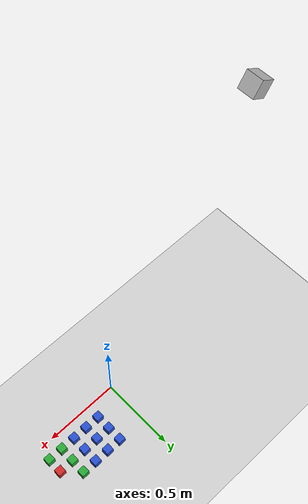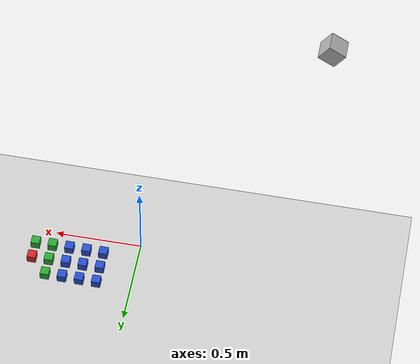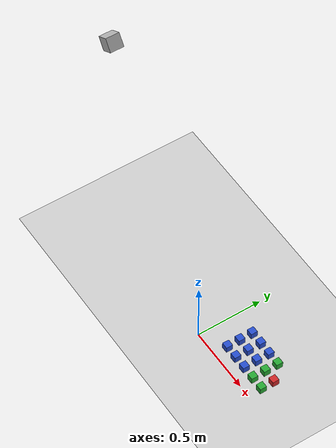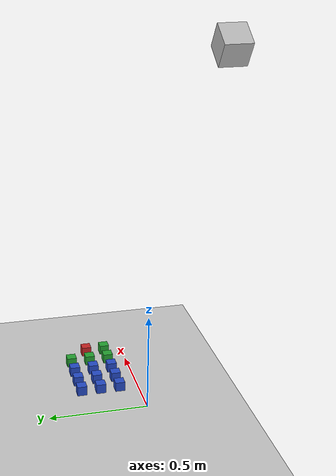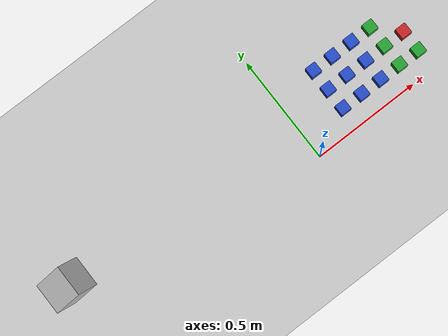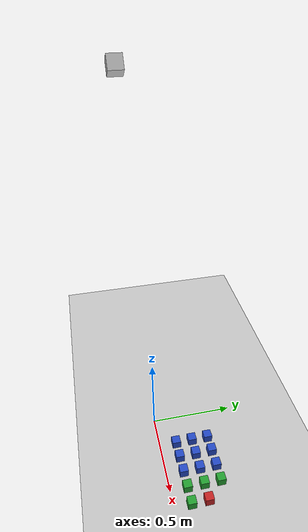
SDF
<sdf version="1.6">
 <world name="default">
  <plugin name="ros_link_attacher_plugin" filename="libgazebo_ros_link_attacher.so"/>
  <light name="sun" type="directional">
   <pose>0 0 10 0 -0 0</pose>
   <diffuse>0.8 0.8 0.8 1</diffuse>
   <specular>0.2 0.2 0.2 1</specular>
   <attenuation>
    <range>1000</range>
    <constant>0.9</constant>
    <linear>0.01</linear>
    <quadratic>0.001</quadratic>
   </attenuation>
   <direction>-0.5 0.1 -0.9</direction>
  </light>
  <model name="ground_plane">
   <static>1</static>
   <link name="link">
    <collision name="collision">
     <geometry><plane><normal>0 0 1</normal><size>100 100</size></plane></geometry>
     <surface>
      <contact><collide_bitmask>65535</collide_bitmask></contact>
      <friction><ode><mu>100</mu><mu2>50</mu2></ode></friction>
     </surface>
    </collision>
    <visual name="visual">
     <cast_shadows>0</cast_shadows>
     <geometry><plane><normal>0 0 1</normal><size>100 100</size></plane></geometry>
     <material>
      <script><uri>file://media/materials/scripts/gazebo.material</uri><name>Gazebo/Grey</name></script>
     </material>
    </visual>
   </link>
  </model>
  <gravity>0 0 -9.8</gravity>
  <magnetic_field>6e-06 2.3e-05 -4.2e-05</magnetic_field>
  <atmosphere type="adiabatic"/>
  <physics name="default_physics" default="0" type="ode">
   <max_step_size>0.001</max_step_size>
   <real_time_factor>1</real_time_factor>
   <real_time_update_rate>1000</real_time_update_rate>
  </physics>
  <scene><ambient>0.4 0.4 0.4 1</ambient><background>0.7 0.7 0.7 1</background><shadows>1</shadows></scene>
  <audio><device>default</device></audio>
  <spherical_coordinates>
   <surface_model>EARTH_WGS84</surface_model>
   <latitude_deg>0</latitude_deg>
   <longitude_deg>0</longitude_deg>
   <elevation>0</elevation>
   <heading_deg>0</heading_deg>
  </spherical_coordinates>
  <model name="blue1">
   <pose>0.2 0.1 0.024991 -9e-06 -2e-06 1.3e-05</pose>
   <link name="link">
    <inertial>
     <mass>10</mass>
     <inertia>
      <ixx>0.166667</ixx>
      <ixy>0</ixy>
      <ixz>0</ixz>
      <iyy>0.166667</iyy>
      <iyz>0</iyz>
      <izz>0.166667</izz>
     </inertia>
    </inertial>
    <collision name="collision">
     <geometry><box><size>0.05 0.05 0.05</size></box></geometry>
     <surface><friction><ode><mu>20</mu><mu2>20</mu2></ode></friction></surface>
    </collision>
    <visual name="visual">
     <geometry><box><size>0.05 0.05 0.05</size></box></geometry>
     <material>
      <script><name>Gazebo/Blue</name><uri>file://media/materials/scripts/gazebo.material</uri></script>
     </material>
    </visual>
   </link>
  </model>
  <model name="blue2">
   <pose>0.2 0.200001 0.025 -1.7e-05 2e-05 1e-06</pose>
   <link name="link">
    <inertial>
     <mass>10</mass>
     <inertia>
      <ixx>0.166667</ixx>
      <ixy>0</ixy>
      <ixz>0</ixz>
      <iyy>0.166667</iyy>
      <iyz>0</iyz>
      <izz>0.166667</izz>
     </inertia>
    </inertial>
    <collision name="collision">
     <geometry><box><size>0.05 0.05 0.05</size></box></geometry>
     <surface><friction><ode><mu>100</mu><mu2>100</mu2></ode></friction></surface>
    </collision>
    <visual name="visual">
     <geometry><box><size>0.05 0.05 0.05</size></box></geometry>
     <material>
      <script><name>Gazebo/Blue</name><uri>file://media/materials/scripts/gazebo.material</uri></script>
     </material>
    </visual>
   </link>
  </model>
  <model name="blue3">
   <pose>0.199999 0.299999 0.025001 2e-05 -3.1e-05 -9e-06</pose>
   <link name="link">
    <inertial>
     <mass>10</mass>
     <inertia>
      <ixx>0.166667</ixx>
      <ixy>0</ixy>
      <ixz>0</ixz>
      <iyy>0.166667</iyy>
      <iyz>0</iyz>
      <izz>0.166667</izz>
     </inertia>
    </inertial>
    <collision name="collision">
     <geometry><box><size>0.05 0.05 0.05</size></box></geometry>
     <surface><friction><ode><mu>100</mu><mu2>100</mu2></ode></friction></surface>
    </collision>
    <visual name="visual">
     <geometry><box><size>0.05 0.05 0.05</size></box></geometry>
     <material>
      <script><name>Gazebo/Blue</name><uri>file://media/materials/scripts/gazebo.material</uri></script>
     </material>
    </visual>
   </link>
  </model>
  <model name="blue4">
   <pose>0.3 0.1 0.025 -5e-06 9e-06 -3.8e-05</pose>
   <link name="link">
    <inertial>
     <mass>10</mass>
     <inertia>
      <ixx>0.166667</ixx>
      <ixy>0</ixy>
      <ixz>0</ixz>
      <iyy>0.166667</iyy>
      <iyz>0</iyz>
      <izz>0.166667</izz>
     </inertia>
    </inertial>
    <collision name="collision">
     <geometry><box><size>0.05 0.05 0.05</size></box></geometry>
     <surface><friction><ode><mu>100</mu><mu2>100</mu2></ode></friction></surface>
    </collision>
    <visual name="visual">
     <geometry><box><size>0.05 0.05 0.05</size></box></geometry>
     <material>
      <script><name>Gazebo/Blue</name><uri>file://media/materials/scripts/gazebo.material</uri></script>
     </material>
    </visual>
   </link>
  </model>
  <model name="blue5">
   <pose>0.3 0.2 0.025 -2e-06 5e-06 -4e-06</pose>
   <link name="link">
    <inertial>
     <mass>10</mass>
     <inertia>
      <ixx>0.166667</ixx>
      <ixy>0</ixy>
      <ixz>0</ixz>
      <iyy>0.166667</iyy>
      <iyz>0</iyz>
      <izz>0.166667</izz>
     </inertia>
    </inertial>
    <collision name="collision">
     <geometry><box><size>0.05 0.05 0.05</size></box></geometry>
     <surface><friction><ode><mu>100</mu><mu2>100</mu2></ode></friction></surface>
    </collision>
    <visual name="visual">
     <geometry><box><size>0.05 0.05 0.05</size></box></geometry>
     <material>
      <script><name>Gazebo/Blue</name><uri>file://media/materials/scripts/gazebo.material</uri></script>
     </material>
    </visual>
   </link>
  </model>
  <model name="blue6">
   <pose>0.300001 0.299999 0.025001 2.5e-05 2.4e-05 -5.6e-05</pose>
   <link name="link">
    <inertial>
     <mass>10</mass>
     <inertia>
      <ixx>0.166667</ixx>
      <ixy>0</ixy>
      <ixz>0</ixz>
      <iyy>0.166667</iyy>
      <iyz>0</iyz>
      <izz>0.166667</izz>
     </inertia>
    </inertial>
    <collision name="collision">
     <geometry><box><size>0.05 0.05 0.05</size></box></geometry>
     <surface><friction><ode><mu>100</mu><mu2>100</mu2></ode></friction></surface>
    </collision>
    <visual name="visual">
     <geometry><box><size>0.05 0.05 0.05</size></box></geometry>
     <material>
      <script><name>Gazebo/Blue</name><uri>file://media/materials/scripts/gazebo.material</uri></script>
     </material>
    </visual>
   </link>
  </model>
  <model name="blue7">
   <pose>0.399998 0.1 0.025 -4e-06 -5e-06 -1.1e-05</pose>
   <link name="link">
    <inertial>
     <mass>10</mass>
     <inertia>
      <ixx>0.166667</ixx>
      <ixy>0</ixy>
      <ixz>0</ixz>
      <iyy>0.166667</iyy>
      <iyz>0</iyz>
      <izz>0.166667</izz>
     </inertia>
    </inertial>
    <collision name="collision">
     <geometry><box><size>0.05 0.05 0.05</size></box></geometry>
     <surface><friction><ode><mu>100</mu><mu2>100</mu2></ode></friction></surface>
    </collision>
    <visual name="visual">
     <geometry><box><size>0.05 0.05 0.05</size></box></geometry>
     <material>
      <script><name>Gazebo/Blue</name><uri>file://media/materials/scripts/gazebo.material</uri></script>
     </material>
    </visual>
   </link>
  </model>
  <model name="blue8">
   <pose>0.4 0.199999 0.025001 1.1e-05 -1.2e-05 -2.2e-05</pose>
   <link name="link">
    <inertial>
     <mass>10</mass>
     <inertia>
      <ixx>0.166667</ixx>
      <ixy>0</ixy>
      <ixz>0</ixz>
      <iyy>0.166667</iyy>
      <iyz>0</iyz>
      <izz>0.166667</izz>
     </inertia>
    </inertial>
    <collision name="collision">
     <geometry><box><size>0.05 0.05 0.05</size></box></geometry>
     <surface><friction><ode><mu>100</mu><mu2>100</mu2></ode></friction></surface>
    </collision>
    <visual name="visual">
     <geometry><box><size>0.05 0.05 0.05</size></box></geometry>
     <material>
      <script><name>Gazebo/Blue</name><uri>file://media/materials/scripts/gazebo.material</uri></script>
     </material>
    </visual>
   </link>
  </model>
  <model name="blue9">
   <pose>0.4 0.300095 0.025002 5.9e-05 -1.1e-05 -0.000743</pose>
   <link name="link">
    <inertial>
     <mass>10</mass>
     <inertia>
      <ixx>0.166667</ixx>
      <ixy>0</ixy>
      <ixz>0</ixz>
      <iyy>0.166667</iyy>
      <iyz>0</iyz>
      <izz>0.166667</izz>
     </inertia>
    </inertial>
    <collision name="collision">
     <geometry><box><size>0.05 0.05 0.05</size></box></geometry>
     <surface><friction><ode><mu>100</mu><mu2>100</mu2></ode></friction></surface>
    </collision>
    <visual name="visual">
     <geometry><box><size>0.05 0.05 0.05</size></box></geometry>
     <material>
      <script><name>Gazebo/Blue</name><uri>file://media/materials/scripts/gazebo.material</uri></script>
     </material>
    </visual>
   </link>
  </model>
  <model name="green1">
   <pose>0.499985 0.099995 0.025001 1.8e-05 3e-06 -0.002814</pose>
   <link name="link">
    <inertial>
     <mass>10</mass>
     <inertia>
      <ixx>0.166667</ixx>
      <ixy>0</ixy>
      <ixz>0</ixz>
      <iyy>0.166667</iyy>
      <iyz>0</iyz>
      <izz>0.166667</izz>
     </inertia>
    </inertial>
    <collision name="collision">
     <geometry><box><size>0.05 0.05 0.05</size></box></geometry>
     <surface><friction><ode><mu>100</mu><mu2>100</mu2></ode></friction></surface>
    </collision>
    <visual name="visual">
     <geometry><box><size>0.05 0.05 0.05</size></box></geometry>
     <material>
      <script><name>Gazebo/Green</name><uri>file://media/materials/scripts/gazebo.material</uri></script>
     </material>
    </visual>
   </link>
  </model>
  <model name="green2">
   <pose>0.5 0.199999 0.025001 1.1e-05 -1e-05 8e-06</pose>
   <link name="link">
    <inertial>
     <mass>10</mass>
     <inertia>
      <ixx>0.166667</ixx>
      <ixy>0</ixy>
      <ixz>0</ixz>
      <iyy>0.166667</iyy>
      <iyz>0</iyz>
      <izz>0.166667</izz>
     </inertia>
    </inertial>
    <collision name="collision">
     <geometry><box><size>0.05 0.05 0.05</size></box></geometry>
     <surface><friction><ode><mu>100</mu><mu2>100</mu2></ode></friction></surface>
    </collision>
    <visual name="visual">
     <geometry><box><size>0.05 0.05 0.05</size></box></geometry>
     <material>
      <script><name>Gazebo/Green</name><uri>file://media/materials/scripts/gazebo.material</uri></script>
     </material>
    </visual>
   </link>
  </model>
  <model name="green3">
   <pose>0.5 0.299924 0.025002 -5.1e-05 -1.9e-05 -3.5e-05</pose>
   <link name="link">
    <inertial>
     <mass>10</mass>
     <inertia>
      <ixx>0.166667</ixx>
      <ixy>0</ixy>
      <ixz>0</ixz>
      <iyy>0.166667</iyy>
      <iyz>0</iyz>
      <izz>0.166667</izz>
     </inertia>
    </inertial>
    <collision name="collision">
     <geometry><box><size>0.05 0.05 0.05</size></box></geometry>
     <surface><friction><ode><mu>100</mu><mu2>100</mu2></ode></friction></surface>
    </collision>
    <visual name="visual">
     <geometry><box><size>0.05 0.05 0.05</size></box></geometry>
     <material>
      <script><name>Gazebo/Green</name><uri>file://media/materials/scripts/gazebo.material</uri></script>
     </material>
    </visual>
   </link>
  </model>
  <model name="green4">
   <pose>0.600001 0.1 0.025 -8e-06 1e-06 6e-06</pose>
   <link name="link">
    <inertial>
     <mass>10</mass>
     <inertia>
      <ixx>0.166667</ixx>
      <ixy>0</ixy>
      <ixz>0</ixz>
      <iyy>0.166667</iyy>
      <iyz>0</iyz>
      <izz>0.166667</izz>
     </inertia>
    </inertial>
    <collision name="collision">
     <geometry><box><size>0.05 0.05 0.05</size></box></geometry>
     <surface><friction><ode><mu>100</mu><mu2>100</mu2></ode></friction></surface>
    </collision>
    <visual name="visual">
     <geometry><box><size>0.05 0.05 0.05</size></box></geometry>
     <material>
      <script><name>Gazebo/Green</name><uri>file://media/materials/scripts/gazebo.material</uri></script>
     </material>
    </visual>
   </link>
  </model>
  <model name="red1">
   <pose>0.600001 0.199999 0.025001 1.9e-05 1.6e-05 3e-05</pose>
   <link name="link">
    <inertial>
     <mass>10</mass>
     <inertia>
      <ixx>0.166667</ixx>
      <ixy>0</ixy>
      <ixz>0</ixz>
      <iyy>0.166667</iyy>
      <iyz>0</iyz>
      <izz>0.166667</izz>
     </inertia>
    </inertial>
    <collision name="collision">
     <geometry><box><size>0.05 0.05 0.05</size></box></geometry>
     <surface><friction><ode><mu>100</mu><mu2>100</mu2></ode></friction></surface>
    </collision>
    <visual name="visual">
     <geometry><box><size>0.05 0.05 0.05</size></box></geometry>
     <material>
      <script><name>Gazebo/Red</name><uri>file://media/materials/scripts/gazebo.material</uri></script>
     </material>
    </visual>
   </link>
  </model>
  <model name="camera">
   <static>true</static>
   <pose>-1 0 2 0 1 0</pose>
   <link name="link">
    <visual name="visual"><geometry><box><size>0.1 0.1 0.1</size></box></geometry></visual>
    <sensor name="my_camera" type="camera">
     <camera>
      <save enabled="true"><path>Pictures/robotics_project</path></save>
      <horizontal_fov>1.047</horizontal_fov>
      <image><width>1920</width><height>1080</height></image>
      <clip><near>0.1</near><far>100</far></clip>
     </camera>
     <always_on>1</always_on>
     <update_rate>1</update_rate>
    </sensor>
   </link>
  </model>
 </world>
</sdf>
